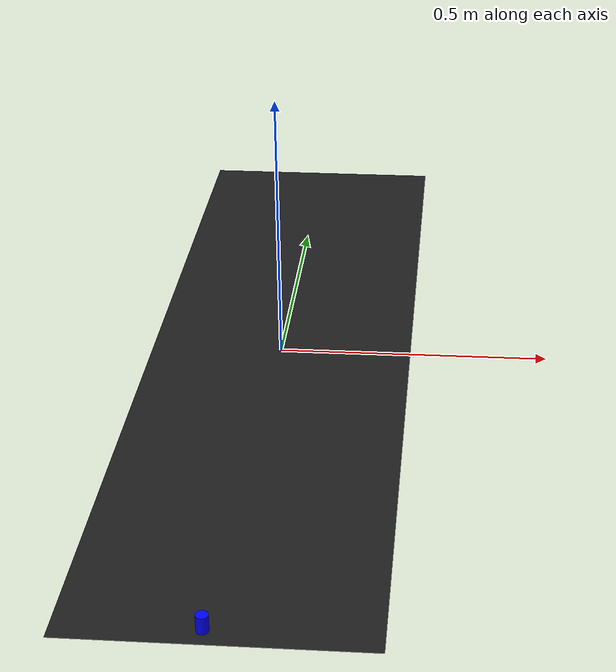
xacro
<?xml version="1.0" ?>

<robot name="robot_1" xmlns:xacro="http://www.ros.org/wiki/xacro" >

  <!-- Include the Xacro files -->
  <!--xacro:include filename="$(find baxter_sim_examples)/models/sensor_banda_1/materials.xacro" /-->
  <xacro:include filename="$(find baxter_sim_examples)/models/sensor_banda_1/gazebo.xacro" />
  <xacro:include filename="$(find baxter_sim_examples)/models/sensor_banda_1/macro.xacro" />

  <!-- chassis definition -->
  <link name="link_chassis">
    <!-- pose and inertial -->
    <pose>0 0 0 0 0 0</pose>

    <inertial>
      <mass value="5"/>
      <origin rpy="0 0 0" xyz="0 0 0"/>
      <xacro:base_inertia mass="5" x1="0.49" y1="1.7" z1="0.0005" />
    </inertial>

    <collision name="collision_chassis">
      <geometry>
        <box size="0.49 1.7 0.0005"/>
      </geometry>
    </collision>

    <visual>
      <origin rpy="0 0 0" xyz="0 0 0"/>
      <geometry>
        <box size="0.49 1.7 0.0005"/>
      </geometry>
      <material name="black"/>
    </visual>
  </link>

  <!-- Link for laser -->
  <link name="sensor_laser">
    <inertial>
      <origin xyz="0 0 0" rpy="0 0 0" />
      <mass value="4" />
      <xacro:cylinder_inertia mass="1" r="0.05" l="0.1" />
    </inertial>

    <visual>
      <origin xyz="0 0 0" rpy="0 0 0" />
      <geometry>
        <cylinder radius="0.01" length="0.03"/>
      </geometry>
      <material name="blue">
        <color rgba="0 0 255 0.3"/>
      </material>
      <material name="laserLight">
        <lighting>1</lighting>
        <ambient>0.3 0.3 0.3 1</ambient>
        <diffuse>0.7 0.7 0.7 1</diffuse>
        <specular>0.01 0.01 0.01 1</specular>
        <emissive>0 0 0 1</emissive>
      </material>
    </visual>

    <collision>
      <origin xyz="0 0 0" rpy="0 0 0"/>
      <geometry>
        <cylinder radius="0.01" length="0.03"/>
      </geometry>
      <material name="collisionLaser">
        <laser_retro>0</laser_retro>
        <max_contacts>10</max_contacts>
      </material>
    </collision>
  </link>

  <!-- Joint for laser -->
  <joint name="joint_sensor_laser" type="fixed">
    <origin xyz="-0.02 -0.82 0.015" rpy="0 0 1.57"/>
    <parent link="link_chassis"/>
    <child link="sensor_laser"/>
  </joint>

</robot>

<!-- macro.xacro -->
<robot xmlns:xacro="http://www.ros.org/wiki/xacro">

  <xacro:macro name="base_inertia" params="mass x1 y1 z1">
    <inertia ixx="${mass*(x1*x1+y1*y1)/12}" ixy = "0" ixz = "0"
              iyy="${mass*(y1*y1+z1*z1)/12}" iyz = "0" izz="${mass*(z1*z1+x1*x1)/12}" />
  </xacro:macro>

  <xacro:macro name="cylinder_inertia" params="mass r l">
    <inertia ixx="${mass*(3*r*r+l*l)/12}" ixy = "0" ixz = "0"
              iyy="${mass*(3*r*r+l*l)/12}" iyz = "0" izz="${mass*(r*r)/2}" />
  </xacro:macro>
</robot>
